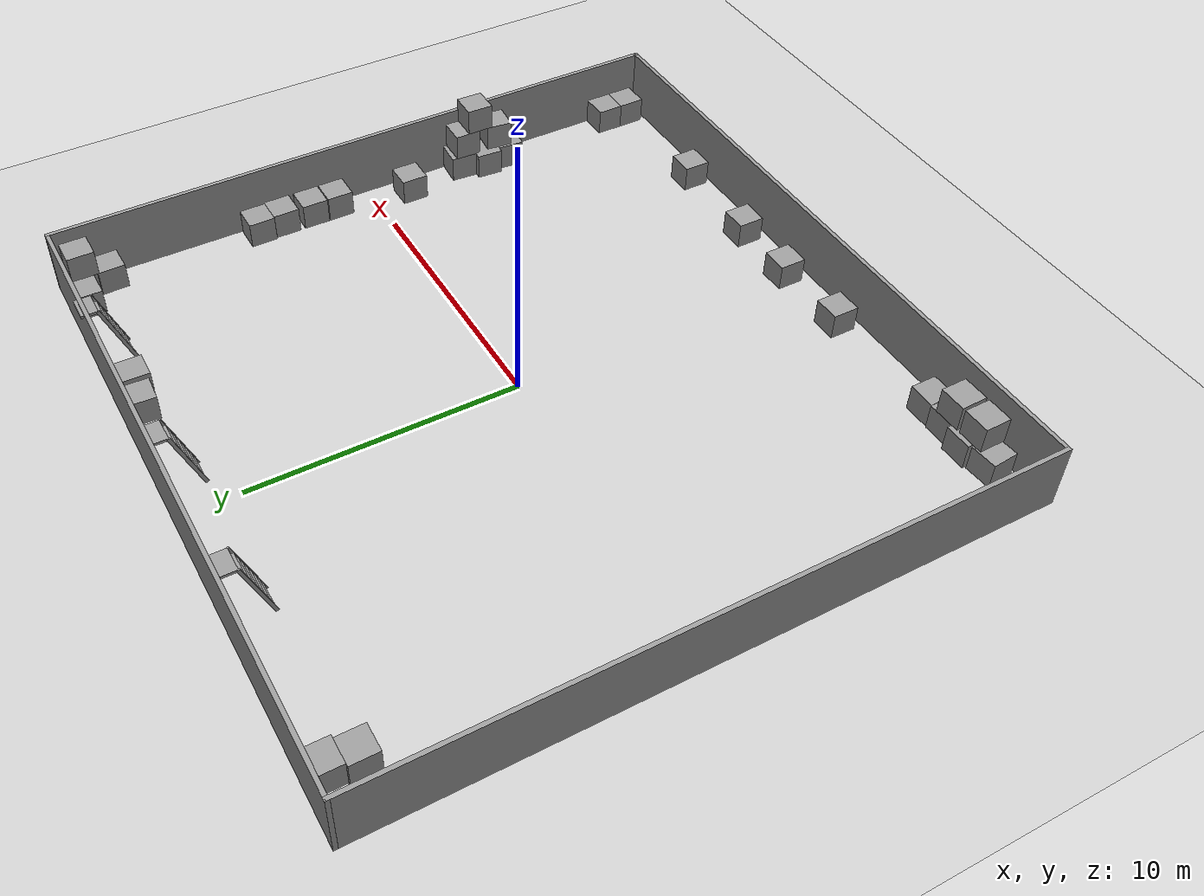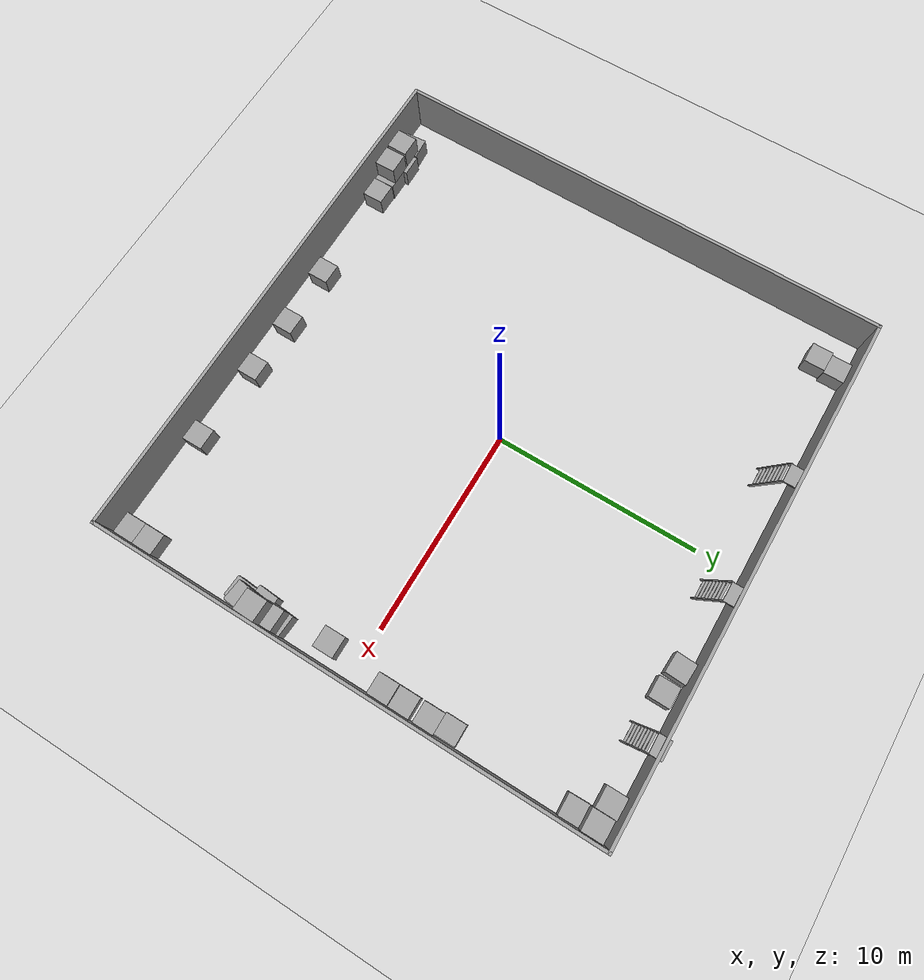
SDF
<sdf version="1.7">
 <world name="default">
  <model name="ground_plane">
   <static>1</static>
   <link name="link">
    <collision name="collision">
     <geometry><plane><normal>0 0 1</normal><size>100 100</size></plane></geometry>
     <surface>
      <contact><collide_bitmask>65535</collide_bitmask></contact>
      <friction><ode><mu>100</mu><mu2>50</mu2></ode></friction>
     </surface>
    </collision>
    <visual name="visual">
     <cast_shadows>0</cast_shadows>
     <geometry><plane><normal>0 0 1</normal><size>100 100</size></plane></geometry>
     <material>
      <script><uri>file://media/materials/scripts/gazebo.material</uri><name>Gazebo/Grey</name></script>
     </material>
    </visual>
   </link>
  </model>
  <model name="unit_box">
   <pose>-10.5484 11.7008 0.5 0 0 -0.000958</pose>
   <link name="link">
    <inertial>
     <mass>1</mass>
     <inertia>
      <ixx>0.166667</ixx>
      <ixy>0</ixy>
      <ixz>0</ixz>
      <iyy>0.166667</iyy>
      <iyz>0</iyz>
      <izz>0.166667</izz>
     </inertia>
    </inertial>
    <collision name="collision"><geometry><box><size>1 1 1</size></box></geometry></collision>
    <visual name="visual">
     <geometry><box><size>1 1 1</size></box></geometry>
     <material>
      <script><name>Gazebo/Grey</name><uri>file://media/materials/scripts/gazebo.material</uri></script>
     </material>
    </visual>
   </link>
  </model>
  <model name="unit_box_0">
   <pose>-10.6609 10.7009 0.5 0 0 -0.001123</pose>
   <link name="link">
    <inertial>
     <mass>1</mass>
     <inertia>
      <ixx>0.166667</ixx>
      <ixy>0</ixy>
      <ixz>0</ixz>
      <iyy>0.166667</iyy>
      <iyz>0</iyz>
      <izz>0.166667</izz>
     </inertia>
    </inertial>
    <collision name="collision"><geometry><box><size>1 1 1</size></box></geometry></collision>
    <visual name="visual">
     <geometry><box><size>1 1 1</size></box></geometry>
     <material>
      <script><name>Gazebo/Grey</name><uri>file://media/materials/scripts/gazebo.material</uri></script>
     </material>
    </visual>
   </link>
  </model>
  <model name="unit_box_10">
   <pose>11.9384 10.5607 0.499988 5e-06 -0 0.018642</pose>
   <link name="link">
    <inertial>
     <mass>1</mass>
     <inertia>
      <ixx>0.166667</ixx>
      <ixy>0</ixy>
      <ixz>0</ixz>
      <iyy>0.166667</iyy>
      <iyz>0</iyz>
      <izz>0.166667</izz>
     </inertia>
    </inertial>
    <collision name="collision"><geometry><box><size>1 1 1</size></box></geometry></collision>
    <visual name="visual">
     <geometry><box><size>1 1 1</size></box></geometry>
     <material>
      <script><name>Gazebo/Grey</name><uri>file://media/materials/scripts/gazebo.material</uri></script>
     </material>
    </visual>
   </link>
  </model>
  <model name="unit_box_11">
   <pose>11.9467 11.5733 0.5 -1e-06 -1e-06 -0.000905</pose>
   <link name="link">
    <inertial>
     <mass>1</mass>
     <inertia>
      <ixx>0.166667</ixx>
      <ixy>0</ixy>
      <ixz>0</ixz>
      <iyy>0.166667</iyy>
      <iyz>0</iyz>
      <izz>0.166667</izz>
     </inertia>
    </inertial>
    <collision name="collision"><geometry><box><size>1 1 1</size></box></geometry></collision>
    <visual name="visual">
     <geometry><box><size>1 1 1</size></box></geometry>
     <material>
      <script><name>Gazebo/Grey</name><uri>file://media/materials/scripts/gazebo.material</uri></script>
     </material>
    </visual>
   </link>
  </model>
  <model name="unit_box_12">
   <pose>10.9468 11.7034 0.499988 5e-06 0 -0.000905</pose>
   <link name="link">
    <inertial>
     <mass>1</mass>
     <inertia>
      <ixx>0.166667</ixx>
      <ixy>0</ixy>
      <ixz>0</ixz>
      <iyy>0.166667</iyy>
      <iyz>0</iyz>
      <izz>0.166667</izz>
     </inertia>
    </inertial>
    <collision name="collision"><geometry><box><size>1 1 1</size></box></geometry></collision>
    <visual name="visual">
     <geometry><box><size>1 1 1</size></box></geometry>
     <material>
      <script><name>Gazebo/Grey</name><uri>file://media/materials/scripts/gazebo.material</uri></script>
     </material>
    </visual>
   </link>
  </model>
  <model name="unit_box_13">
   <pose>11.9323 11.5076 1.49999 4e-06 1.5e-05 0.004138</pose>
   <link name="link">
    <inertial>
     <mass>1</mass>
     <inertia>
      <ixx>0.166667</ixx>
      <ixy>0</ixy>
      <ixz>0</ixz>
      <iyy>0.166667</iyy>
      <iyz>0</iyz>
      <izz>0.166667</izz>
     </inertia>
    </inertial>
    <collision name="collision"><geometry><box><size>1 1 1</size></box></geometry></collision>
    <visual name="visual">
     <geometry><box><size>1 1 1</size></box></geometry>
     <material>
      <script><name>Gazebo/Grey</name><uri>file://media/materials/scripts/gazebo.material</uri></script>
     </material>
    </visual>
   </link>
  </model>
  <model name="unit_box_15">
   <pose>11.9479 1.5494 0.499995 0 1e-05 1.7e-05</pose>
   <link name="link">
    <inertial>
     <mass>1</mass>
     <inertia>
      <ixx>0.166667</ixx>
      <ixy>0</ixy>
      <ixz>0</ixz>
      <iyy>0.166667</iyy>
      <iyz>0</iyz>
      <izz>0.166667</izz>
     </inertia>
    </inertial>
    <collision name="collision"><geometry><box><size>1 1 1</size></box></geometry></collision>
    <visual name="visual">
     <geometry><box><size>1 1 1</size></box></geometry>
     <material>
      <script><name>Gazebo/Grey</name><uri>file://media/materials/scripts/gazebo.material</uri></script>
     </material>
    </visual>
   </link>
  </model>
  <model name="unit_box_16">
   <pose>-10.6579 -11.5048 0.499862 5e-06 -1.3e-05 0.079785</pose>
   <link name="link">
    <inertial>
     <mass>1</mass>
     <inertia>
      <ixx>0.166667</ixx>
      <ixy>0</ixy>
      <ixz>0</ixz>
      <iyy>0.166667</iyy>
      <iyz>0</iyz>
      <izz>0.166667</izz>
     </inertia>
    </inertial>
    <collision name="collision"><geometry><box><size>1 1 1</size></box></geometry></collision>
    <visual name="visual">
     <geometry><box><size>1 1 1</size></box></geometry>
     <material>
      <script><name>Gazebo/Grey</name><uri>file://media/materials/scripts/gazebo.material</uri></script>
     </material>
    </visual>
   </link>
  </model>
  <model name="unit_box_17">
   <pose>-9.98977 -11.5435 1.49988 6e-06 -3e-05 0.011934</pose>
   <link name="link">
    <inertial>
     <mass>1</mass>
     <inertia>
      <ixx>0.166667</ixx>
      <ixy>0</ixy>
      <ixz>0</ixz>
      <iyy>0.166667</iyy>
      <iyz>0</iyz>
      <izz>0.166667</izz>
     </inertia>
    </inertial>
    <collision name="collision"><geometry><box><size>1 1 1</size></box></geometry></collision>
    <visual name="visual">
     <geometry><box><size>1 1 1</size></box></geometry>
     <material>
      <script><name>Gazebo/Grey</name><uri>file://media/materials/scripts/gazebo.material</uri></script>
     </material>
    </visual>
   </link>
  </model>
  <model name="unit_box_17_clone">
   <pose>-8.62537 -11.5193 0.5 -1e-06 1e-06 0.010227</pose>
   <link name="link">
    <inertial>
     <mass>1</mass>
     <inertia>
      <ixx>0.166667</ixx>
      <ixy>0</ixy>
      <ixz>0</ixz>
      <iyy>0.166667</iyy>
      <iyz>0</iyz>
      <izz>0.166667</izz>
     </inertia>
    </inertial>
    <collision name="collision"><geometry><box><size>1 1 1</size></box></geometry></collision>
    <visual name="visual">
     <geometry><box><size>1 1 1</size></box></geometry>
     <material>
      <script><name>Gazebo/Grey</name><uri>file://media/materials/scripts/gazebo.material</uri></script>
     </material>
    </visual>
   </link>
  </model>
  <model name="unit_box_17_clone_2">
   <pose>-8.88611 -11.5168 1.5 -1e-06 1.9e-05 0.016055</pose>
   <link name="link">
    <inertial>
     <mass>1</mass>
     <inertia>
      <ixx>0.166667</ixx>
      <ixy>0</ixy>
      <ixz>0</ixz>
      <iyy>0.166667</iyy>
      <iyz>0</iyz>
      <izz>0.166667</izz>
     </inertia>
    </inertial>
    <collision name="collision"><geometry><box><size>1 1 1</size></box></geometry></collision>
    <visual name="visual">
     <geometry><box><size>1 1 1</size></box></geometry>
     <material>
      <script><name>Gazebo/Grey</name><uri>file://media/materials/scripts/gazebo.material</uri></script>
     </material>
    </visual>
   </link>
  </model>
  <model name="unit_box_18">
   <pose>11.5985 -4.78924 0.499999 -7e-06 6e-06 -0.070347</pose>
   <link name="link">
    <inertial>
     <mass>1</mass>
     <inertia>
      <ixx>0.166667</ixx>
      <ixy>0</ixy>
      <ixz>0</ixz>
      <iyy>0.166667</iyy>
      <iyz>0</iyz>
      <izz>0.166667</izz>
     </inertia>
    </inertial>
    <collision name="collision"><geometry><box><size>1 1 1</size></box></geometry></collision>
    <visual name="visual">
     <geometry><box><size>1 1 1</size></box></geometry>
     <material>
      <script><name>Gazebo/Grey</name><uri>file://media/materials/scripts/gazebo.material</uri></script>
     </material>
    </visual>
   </link>
  </model>
  <model name="unit_box_19">
   <pose>11.9085 -3.80861 0.5 0 1e-06 -0.070342</pose>
   <link name="link">
    <inertial>
     <mass>1</mass>
     <inertia>
      <ixx>0.166667</ixx>
      <ixy>0</ixy>
      <ixz>0</ixz>
      <iyy>0.166667</iyy>
      <iyz>0</iyz>
      <izz>0.166667</izz>
     </inertia>
    </inertial>
    <collision name="collision"><geometry><box><size>1 1 1</size></box></geometry></collision>
    <visual name="visual">
     <geometry><box><size>1 1 1</size></box></geometry>
     <material>
      <script><name>Gazebo/Grey</name><uri>file://media/materials/scripts/gazebo.material</uri></script>
     </material>
    </visual>
   </link>
  </model>
  <model name="unit_box_20">
   <pose>11.7268 -5.80078 0.5 7e-06 7e-06 -0.070359</pose>
   <link name="link">
    <inertial>
     <mass>1</mass>
     <inertia>
      <ixx>0.166667</ixx>
      <ixy>0</ixy>
      <ixz>0</ixz>
      <iyy>0.166667</iyy>
      <iyz>0</iyz>
      <izz>0.166667</izz>
     </inertia>
    </inertial>
    <collision name="collision"><geometry><box><size>1 1 1</size></box></geometry></collision>
    <visual name="visual">
     <geometry><box><size>1 1 1</size></box></geometry>
     <material>
      <script><name>Gazebo/Grey</name><uri>file://media/materials/scripts/gazebo.material</uri></script>
     </material>
    </visual>
   </link>
  </model>
  <model name="unit_box_20_clone">
   <pose>7.00934 -11.5415 0.499995 0 1e-05 0.002791</pose>
   <link name="link">
    <inertial>
     <mass>1</mass>
     <inertia>
      <ixx>0.166667</ixx>
      <ixy>0</ixy>
      <ixz>0</ixz>
      <iyy>0.166667</iyy>
      <iyz>0</iyz>
      <izz>0.166667</izz>
     </inertia>
    </inertial>
    <collision name="collision"><geometry><box><size>1 1 1</size></box></geometry></collision>
    <visual name="visual">
     <geometry><box><size>1 1 1</size></box></geometry>
     <material>
      <script><name>Gazebo/Grey</name><uri>file://media/materials/scripts/gazebo.material</uri></script>
     </material>
    </visual>
   </link>
  </model>
  <model name="unit_box_20_clone_0">
   <pose>11.8643 -5.36609 1.5 -5e-06 1e-05 -0.111309</pose>
   <link name="link">
    <inertial>
     <mass>1</mass>
     <inertia>
      <ixx>0.166667</ixx>
      <ixy>0</ixy>
      <ixz>0</ixz>
      <iyy>0.166667</iyy>
      <iyz>0</iyz>
      <izz>0.166667</izz>
     </inertia>
    </inertial>
    <collision name="collision"><geometry><box><size>1 1 1</size></box></geometry></collision>
    <visual name="visual">
     <geometry><box><size>1 1 1</size></box></geometry>
     <material>
      <script><name>Gazebo/Grey</name><uri>file://media/materials/scripts/gazebo.material</uri></script>
     </material>
    </visual>
   </link>
  </model>
  <model name="unit_box_20_clone_1">
   <pose>11.9239 -4.53395 2.5 4e-06 1.9e-05 -0.02535</pose>
   <link name="link">
    <inertial>
     <mass>1</mass>
     <inertia>
      <ixx>0.166667</ixx>
      <ixy>0</ixy>
      <ixz>0</ixz>
      <iyy>0.166667</iyy>
      <iyz>0</iyz>
      <izz>0.166667</izz>
     </inertia>
    </inertial>
    <collision name="collision"><geometry><box><size>1 1 1</size></box></geometry></collision>
    <visual name="visual">
     <geometry><box><size>1 1 1</size></box></geometry>
     <material>
      <script><name>Gazebo/Grey</name><uri>file://media/materials/scripts/gazebo.material</uri></script>
     </material>
    </visual>
   </link>
  </model>
  <model name="unit_box_21">
   <pose>11.9159 -3.98319 1.5 4e-06 6e-06 -0.010982</pose>
   <link name="link">
    <inertial>
     <mass>1</mass>
     <inertia>
      <ixx>0.166667</ixx>
      <ixy>0</ixy>
      <ixz>0</ixz>
      <iyy>0.166667</iyy>
      <iyz>0</iyz>
      <izz>0.166667</izz>
     </inertia>
    </inertial>
    <collision name="collision"><geometry><box><size>1 1 1</size></box></geometry></collision>
    <visual name="visual">
     <geometry><box><size>1 1 1</size></box></geometry>
     <material>
      <script><name>Gazebo/Grey</name><uri>file://media/materials/scripts/gazebo.material</uri></script>
     </material>
    </visual>
   </link>
  </model>
  <model name="unit_box_22">
   <pose>11.9475 -11.539 0.499995 0 1e-05 0.00075</pose>
   <link name="link">
    <inertial>
     <mass>1</mass>
     <inertia>
      <ixx>0.166667</ixx>
      <ixy>0</ixy>
      <ixz>0</ixz>
      <iyy>0.166667</iyy>
      <iyz>0</iyz>
      <izz>0.166667</izz>
     </inertia>
    </inertial>
    <collision name="collision"><geometry><box><size>1 1 1</size></box></geometry></collision>
    <visual name="visual">
     <geometry><box><size>1 1 1</size></box></geometry>
     <material>
      <script><name>Gazebo/Grey</name><uri>file://media/materials/scripts/gazebo.material</uri></script>
     </material>
    </visual>
   </link>
  </model>
  <model name="unit_box_23">
   <pose>6.13032 11.5243 0.499995 1e-05 -0 -0.007274</pose>
   <link name="link">
    <inertial>
     <mass>1</mass>
     <inertia>
      <ixx>0.166667</ixx>
      <ixy>0</ixy>
      <ixz>0</ixz>
      <iyy>0.166667</iyy>
      <iyz>0</iyz>
      <izz>0.166667</izz>
     </inertia>
    </inertial>
    <collision name="collision"><geometry><box><size>1 1 1</size></box></geometry></collision>
    <visual name="visual">
     <geometry><box><size>1 1 1</size></box></geometry>
     <material>
      <script><name>Gazebo/Grey</name><uri>file://media/materials/scripts/gazebo.material</uri></script>
     </material>
    </visual>
   </link>
  </model>
  <model name="unit_box_24">
   <pose>4.94336 11.6796 0.499995 -1.57081 -1.57079 1.51865</pose>
   <link name="link">
    <inertial>
     <mass>1</mass>
     <inertia>
      <ixx>0.166667</ixx>
      <ixy>0</ixy>
      <ixz>0</ixz>
      <iyy>0.166667</iyy>
      <iyz>0</iyz>
      <izz>0.166667</izz>
     </inertia>
    </inertial>
    <collision name="collision"><geometry><box><size>1 1 1</size></box></geometry></collision>
    <visual name="visual">
     <geometry><box><size>1 1 1</size></box></geometry>
     <material>
      <script><name>Gazebo/Grey</name><uri>file://media/materials/scripts/gazebo.material</uri></script>
     </material>
    </visual>
   </link>
  </model>
  <model name="unit_box_25">
   <pose>11.9479 2.5813 0.499995 0 1e-05 1.6e-05</pose>
   <link name="link">
    <inertial>
     <mass>1</mass>
     <inertia>
      <ixx>0.166667</ixx>
      <ixy>0</ixy>
      <ixz>0</ixz>
      <iyy>0.166667</iyy>
      <iyz>0</iyz>
      <izz>0.166667</izz>
     </inertia>
    </inertial>
    <collision name="collision"><geometry><box><size>1 1 1</size></box></geometry></collision>
    <visual name="visual">
     <geometry><box><size>1 1 1</size></box></geometry>
     <material>
      <script><name>Gazebo/Grey</name><uri>file://media/materials/scripts/gazebo.material</uri></script>
     </material>
    </visual>
   </link>
  </model>
  <model name="unit_box_26">
   <pose>11.9477 3.76706 0.499995 -1e-05 -0 0.000301</pose>
   <link name="link">
    <inertial>
     <mass>1</mass>
     <inertia>
      <ixx>0.166667</ixx>
      <ixy>0</ixy>
      <ixz>0</ixz>
      <iyy>0.166667</iyy>
      <iyz>0</iyz>
      <izz>0.166667</izz>
     </inertia>
    </inertial>
    <collision name="collision"><geometry><box><size>1 1 1</size></box></geometry></collision>
    <visual name="visual">
     <geometry><box><size>1 1 1</size></box></geometry>
     <material>
      <script><name>Gazebo/Grey</name><uri>file://media/materials/scripts/gazebo.material</uri></script>
     </material>
    </visual>
   </link>
  </model>
  <model name="unit_box_27">
   <pose>11.8814 4.76704 0.499995 -1e-05 0 0.000302</pose>
   <link name="link">
    <inertial>
     <mass>1</mass>
     <inertia>
      <ixx>0.166667</ixx>
      <ixy>0</ixy>
      <ixz>0</ixz>
      <iyy>0.166667</iyy>
      <iyz>0</iyz>
      <izz>0.166667</izz>
     </inertia>
    </inertial>
    <collision name="collision"><geometry><box><size>1 1 1</size></box></geometry></collision>
    <visual name="visual">
     <geometry><box><size>1 1 1</size></box></geometry>
     <material>
      <script><name>Gazebo/Grey</name><uri>file://media/materials/scripts/gazebo.material</uri></script>
     </material>
    </visual>
   </link>
  </model>
  <model name="unit_box_28">
   <pose>-7.61872 -11.5424 0.499995 -1e-05 -0 0.003873</pose>
   <link name="link">
    <inertial>
     <mass>1</mass>
     <inertia>
      <ixx>0.166667</ixx>
      <ixy>0</ixy>
      <ixz>0</ixz>
      <iyy>0.166667</iyy>
      <iyz>0</iyz>
      <izz>0.166667</izz>
     </inertia>
    </inertial>
    <collision name="collision"><geometry><box><size>1 1 1</size></box></geometry></collision>
    <visual name="visual">
     <geometry><box><size>1 1 1</size></box></geometry>
     <material>
      <script><name>Gazebo/Grey</name><uri>file://media/materials/scripts/gazebo.material</uri></script>
     </material>
    </visual>
   </link>
  </model>
  <model name="unit_box_29">
   <pose>-2.65126 -11.3902 0.5 0 -0 0</pose>
   <link name="link">
    <inertial>
     <mass>1</mass>
     <inertia>
      <ixx>0.166667</ixx>
      <ixy>0</ixy>
      <ixz>0</ixz>
      <iyy>0.166667</iyy>
      <iyz>0</iyz>
      <izz>0.166667</izz>
     </inertia>
    </inertial>
    <collision name="collision"><geometry><box><size>1 1 1</size></box></geometry></collision>
    <visual name="visual">
     <geometry><box><size>1 1 1</size></box></geometry>
     <material>
      <script><name>Gazebo/Grey</name><uri>file://media/materials/scripts/gazebo.material</uri></script>
     </material>
    </visual>
   </link>
  </model>
  <model name="unit_box_30">
   <pose>3.08895 -11.3753 0.499995 -1e-05 -0 -1.1e-05</pose>
   <link name="link">
    <inertial>
     <mass>1</mass>
     <inertia>
      <ixx>0.166667</ixx>
      <ixy>0</ixy>
      <ixz>0</ixz>
      <iyy>0.166667</iyy>
      <iyz>0</iyz>
      <izz>0.166667</izz>
     </inertia>
    </inertial>
    <collision name="collision"><geometry><box><size>1 1 1</size></box></geometry></collision>
    <visual name="visual">
     <geometry><box><size>1 1 1</size></box></geometry>
     <material>
      <script><name>Gazebo/Grey</name><uri>file://media/materials/scripts/gazebo.material</uri></script>
     </material>
    </visual>
   </link>
  </model>
  <model name="unit_box_31">
   <pose>0.379472 -11.3219 0.499995 1e-05 -0 0</pose>
   <link name="link">
    <inertial>
     <mass>1</mass>
     <inertia>
      <ixx>0.166667</ixx>
      <ixy>0</ixy>
      <ixz>0</ixz>
      <iyy>0.166667</iyy>
      <iyz>0</iyz>
      <izz>0.166667</izz>
     </inertia>
    </inertial>
    <collision name="collision"><geometry><box><size>1 1 1</size></box></geometry></collision>
    <visual name="visual">
     <geometry><box><size>1 1 1</size></box></geometry>
     <material>
      <script><name>Gazebo/Grey</name><uri>file://media/materials/scripts/gazebo.material</uri></script>
     </material>
    </visual>
   </link>
  </model>
  <model name="unit_box_32">
   <pose>11.5214 -1.4211 0.499995 0 -1e-05 2e-06</pose>
   <link name="link">
    <inertial>
     <mass>1</mass>
     <inertia>
      <ixx>0.166667</ixx>
      <ixy>0</ixy>
      <ixz>0</ixz>
      <iyy>0.166667</iyy>
      <iyz>0</iyz>
      <izz>0.166667</izz>
     </inertia>
    </inertial>
    <collision name="collision"><geometry><box><size>1 1 1</size></box></geometry></collision>
    <visual name="visual">
     <geometry><box><size>1 1 1</size></box></geometry>
     <material>
      <script><name>Gazebo/Grey</name><uri>file://media/materials/scripts/gazebo.material</uri></script>
     </material>
    </visual>
   </link>
  </model>
  <model name="unit_box_33">
   <pose>11.9475 -10.539 0.499995 -0 1e-05 0.000745</pose>
   <link name="link">
    <inertial>
     <mass>1</mass>
     <inertia>
      <ixx>0.166667</ixx>
      <ixy>0</ixy>
      <ixz>0</ixz>
      <iyy>0.166667</iyy>
      <iyz>0</iyz>
      <izz>0.166667</izz>
     </inertia>
    </inertial>
    <collision name="collision"><geometry><box><size>1 1 1</size></box></geometry></collision>
    <visual name="visual">
     <geometry><box><size>1 1 1</size></box></geometry>
     <material>
      <script><name>Gazebo/Grey</name><uri>file://media/materials/scripts/gazebo.material</uri></script>
     </material>
    </visual>
   </link>
  </model>
  <model name="ladder_70deg_0rails">
   <static>1</static>
   <link name="step0">
    <pose>0 0.097059 0.266667 0 -0 0</pose>
    <inertial>
     <mass>9.75482</mass>
     <inertia>
      <ixx>0.00957124</ixx>
      <iyy>0.65963</iyy>
      <izz>0.666842</izz>
      <ixy>0</ixy>
      <ixz>0</ixz>
      <iyz>0</iyz>
     </inertia>
    </inertial>
    <collision name="collision"><geometry><box><size>0.9 0.1016 0.0381</size></box></geometry></collision>
    <visual name="visual">
     <geometry><box><size>0.9 0.1016 0.0381</size></box></geometry>
     <material>
      <script><uri>file://media/materials/scripts/gazebo.material</uri><name>Gazebo/Grey</name></script>
     </material>
    </visual>
   </link>
   <link name="step1">
    <pose>0 0.194117 0.533333 0 -0 0</pose>
    <inertial>
     <mass>9.75482</mass>
     <inertia>
      <ixx>0.00957124</ixx>
      <iyy>0.65963</iyy>
      <izz>0.666842</izz>
      <ixy>0</ixy>
      <ixz>0</ixz>
      <iyz>0</iyz>
     </inertia>
    </inertial>
    <collision name="collision"><geometry><box><size>0.9 0.1016 0.0381</size></box></geometry></collision>
    <visual name="visual">
     <geometry><box><size>0.9 0.1016 0.0381</size></box></geometry>
     <material>
      <script><uri>file://media/materials/scripts/gazebo.material</uri><name>Gazebo/Grey</name></script>
     </material>
    </visual>
   </link>
   <link name="step2">
    <pose>0 0.291176 0.8 0 -0 0</pose>
    <inertial>
     <mass>9.75482</mass>
     <inertia>
      <ixx>0.00957124</ixx>
      <iyy>0.65963</iyy>
      <izz>0.666842</izz>
      <ixy>0</ixy>
      <ixz>0</ixz>
      <iyz>0</iyz>
     </inertia>
    </inertial>
    <collision name="collision"><geometry><box><size>0.9 0.1016 0.0381</size></box></geometry></collision>
    <visual name="visual">
     <geometry><box><size>0.9 0.1016 0.0381</size></box></geometry>
     <material>
      <script><uri>file://media/materials/scripts/gazebo.material</uri><name>Gazebo/Grey</name></script>
     </material>
    </visual>
   </link>
   <link name="step3">
    <pose>0 0.388235 1.06667 0 -0 0</pose>
    <inertial>
     <mass>9.75482</mass>
     <inertia>
      <ixx>0.00957124</ixx>
      <iyy>0.65963</iyy>
      <izz>0.666842</izz>
      <ixy>0</ixy>
      <ixz>0</ixz>
      <iyz>0</iyz>
     </inertia>
    </inertial>
    <collision name="collision"><geometry><box><size>0.9 0.1016 0.0381</size></box></geometry></collision>
    <visual name="visual">
     <geometry><box><size>0.9 0.1016 0.0381</size></box></geometry>
     <material>
      <script><uri>file://media/materials/scripts/gazebo.material</uri><name>Gazebo/Grey</name></script>
     </material>
    </visual>
   </link>
   <link name="step4">
    <pose>0 0.485294 1.33333 0 -0 0</pose>
    <inertial>
     <mass>9.75482</mass>
     <inertia>
      <ixx>0.00957124</ixx>
      <iyy>0.65963</iyy>
      <izz>0.666842</izz>
      <ixy>0</ixy>
      <ixz>0</ixz>
      <iyz>0</iyz>
     </inertia>
    </inertial>
    <collision name="collision"><geometry><box><size>0.9 0.1016 0.0381</size></box></geometry></collision>
    <visual name="visual">
     <geometry><box><size>0.9 0.1016 0.0381</size></box></geometry>
     <material>
      <script><uri>file://media/materials/scripts/gazebo.material</uri><name>Gazebo/Grey</name></script>
     </material>
    </visual>
   </link>
   <link name="step5">
    <pose>0 0.582352 1.6 0 -0 0</pose>
    <inertial>
     <mass>9.75482</mass>
     <inertia>
      <ixx>0.00957124</ixx>
      <iyy>0.65963</iyy>
      <izz>0.666842</izz>
      <ixy>0</ixy>
      <ixz>0</ixz>
      <iyz>0</iyz>
     </inertia>
    </inertial>
    <collision name="collision"><geometry><box><size>0.9 0.1016 0.0381</size></box></geometry></collision>
    <visual name="visual">
     <geometry><box><size>0.9 0.1016 0.0381</size></box></geometry>
     <material>
      <script><uri>file://media/materials/scripts/gazebo.material</uri><name>Gazebo/Grey</name></script>
     </material>
    </visual>
   </link>
   <link name="step6">
    <pose>0 0.679411 1.86667 0 -0 0</pose>
    <inertial>
     <mass>9.75482</mass>
     <inertia>
      <ixx>0.00957124</ixx>
      <iyy>0.65963</iyy>
      <izz>0.666842</izz>
      <ixy>0</ixy>
      <ixz>0</ixz>
      <iyz>0</iyz>
     </inertia>
    </inertial>
    <collision name="collision"><geometry><box><size>0.9 0.1016 0.0381</size></box></geometry></collision>
    <visual name="visual">
     <geometry><box><size>0.9 0.1016 0.0381</size></box></geometry>
     <material>
      <script><uri>file://media/materials/scripts/gazebo.material</uri><name>Gazebo/Grey</name></script>
     </material>
    </visual>
   </link>
   <link name="step7">
    <pose>0 0.77647 2.13333 0 -0 0</pose>
    <inertial>
     <mass>9.75482</mass>
     <inertia>
      <ixx>0.00957124</ixx>
      <iyy>0.65963</iyy>
      <izz>0.666842</izz>
      <ixy>0</ixy>
      <ixz>0</ixz>
      <iyz>0</iyz>
     </inertia>
    </inertial>
    <collision name="collision"><geometry><box><size>0.9 0.1016 0.0381</size></box></geometry></collision>
    <visual name="visual">
     <geometry><box><size>0.9 0.1016 0.0381</size></box></geometry>
     <material>
      <script><uri>file://media/materials/scripts/gazebo.material</uri><name>Gazebo/Grey</name></script>
     </material>
    </visual>
   </link>
   <link name="landing">
    <pose>0 1.17353 2.4 0 -0 0</pose>
    <inertial>
     <mass>57.6072</mass>
     <inertia><ixx>1.73518</ixx><iyy>3.89545</iyy><izz>5.6167</izz><ixy>0</ixy><ixz>0</ixz><iyz>0</iyz></inertia>
    </inertial>
    <collision name="collision"><geometry><box><size>0.9 0.6 0.1016</size></box></geometry></collision>
    <visual name="visual">
     <geometry><box><size>0.9 0.6 0.1016</size></box></geometry>
     <material>
      <script><uri>file://media/materials/scripts/gazebo.material</uri><name>Gazebo/Grey</name></script>
     </material>
    </visual>
   </link>
   <link name="left_side_wall">
    <pose>-0.45 0.436764 1.2 1.22173 -0 0</pose>
    <collision name="collision"><geometry><box><size>0.0508 2.63403 0.13</size></box></geometry></collision>
    <visual name="visual">
     <geometry><box><size>0.0508 2.63403 0.13</size></box></geometry>
     <material>
      <script><uri>file://media/materials/scripts/gazebo.material</uri><name>Gazebo/Grey</name></script>
     </material>
    </visual>
   </link>
   <link name="right_side_wall">
    <pose>0.45 0.436764 1.2 1.22173 -0 0</pose>
    <collision name="collision"><geometry><box><size>0.0508 2.63403 0.13</size></box></geometry></collision>
    <visual name="visual">
     <geometry><box><size>0.0508 2.63403 0.13</size></box></geometry>
     <material>
      <script><uri>file://media/materials/scripts/gazebo.material</uri><name>Gazebo/Grey</name></script>
     </material>
    </visual>
   </link>
   <pose>-4.32634 10.7561 0 0 -0 0</pose>
  </model>
  <model name="unit_box_0_clone">
   <pose>-9.63147 -11.3606 0.499909 5e-06 -4.6e-05 0.019096</pose>
   <link name="link">
    <inertial>
     <mass>1</mass>
     <inertia>
      <ixx>0.166667</ixx>
      <ixy>0</ixy>
      <ixz>0</ixz>
      <iyy>0.166667</iyy>
      <iyz>0</iyz>
      <izz>0.166667</izz>
     </inertia>
    </inertial>
    <collision name="collision"><geometry><box><size>1 1 1</size></box></geometry></collision>
    <visual name="visual">
     <geometry><box><size>1 1 1</size></box></geometry>
     <material>
      <script><name>Gazebo/Grey</name><uri>file://media/materials/scripts/gazebo.material</uri></script>
     </material>
    </visual>
   </link>
  </model>
  <model name="ladder_70deg_0rails_clone">
   <static>1</static>
   <link name="step0">
    <pose>0 0.097059 0.266667 0 -0 0</pose>
    <inertial>
     <mass>9.75482</mass>
     <inertia>
      <ixx>0.00957124</ixx>
      <iyy>0.65963</iyy>
      <izz>0.666842</izz>
      <ixy>0</ixy>
      <ixz>0</ixz>
      <iyz>0</iyz>
     </inertia>
    </inertial>
    <collision name="collision"><geometry><box><size>0.9 0.1016 0.0381</size></box></geometry></collision>
    <visual name="visual">
     <geometry><box><size>0.9 0.1016 0.0381</size></box></geometry>
     <material>
      <script><uri>file://media/materials/scripts/gazebo.material</uri><name>Gazebo/Grey</name></script>
     </material>
    </visual>
   </link>
   <link name="step1">
    <pose>0 0.194117 0.533333 0 -0 0</pose>
    <inertial>
     <mass>9.75482</mass>
     <inertia>
      <ixx>0.00957124</ixx>
      <iyy>0.65963</iyy>
      <izz>0.666842</izz>
      <ixy>0</ixy>
      <ixz>0</ixz>
      <iyz>0</iyz>
     </inertia>
    </inertial>
    <collision name="collision"><geometry><box><size>0.9 0.1016 0.0381</size></box></geometry></collision>
    <visual name="visual">
     <geometry><box><size>0.9 0.1016 0.0381</size></box></geometry>
     <material>
      <script><uri>file://media/materials/scripts/gazebo.material</uri><name>Gazebo/Grey</name></script>
     </material>
    </visual>
   </link>
   <link name="step2">
    <pose>0 0.291176 0.8 0 -0 0</pose>
    <inertial>
     <mass>9.75482</mass>
     <inertia>
      <ixx>0.00957124</ixx>
      <iyy>0.65963</iyy>
      <izz>0.666842</izz>
      <ixy>0</ixy>
      <ixz>0</ixz>
      <iyz>0</iyz>
     </inertia>
    </inertial>
    <collision name="collision"><geometry><box><size>0.9 0.1016 0.0381</size></box></geometry></collision>
    <visual name="visual">
     <geometry><box><size>0.9 0.1016 0.0381</size></box></geometry>
     <material>
      <script><uri>file://media/materials/scripts/gazebo.material</uri><name>Gazebo/Grey</name></script>
     </material>
    </visual>
   </link>
   <link name="step3">
    <pose>0 0.388235 1.06667 0 -0 0</pose>
    <inertial>
     <mass>9.75482</mass>
     <inertia>
      <ixx>0.00957124</ixx>
      <iyy>0.65963</iyy>
      <izz>0.666842</izz>
      <ixy>0</ixy>
      <ixz>0</ixz>
      <iyz>0</iyz>
     </inertia>
    </inertial>
    <collision name="collision"><geometry><box><size>0.9 0.1016 0.0381</size></box></geometry></collision>
    <visual name="visual">
     <geometry><box><size>0.9 0.1016 0.0381</size></box></geometry>
     <material>
      <script><uri>file://media/materials/scripts/gazebo.material</uri><name>Gazebo/Grey</name></script>
     </material>
    </visual>
   </link>
   <link name="step4">
    <pose>0 0.485294 1.33333 0 -0 0</pose>
    <inertial>
     <mass>9.75482</mass>
     <inertia>
      <ixx>0.00957124</ixx>
      <iyy>0.65963</iyy>
      <izz>0.666842</izz>
      <ixy>0</ixy>
      <ixz>0</ixz>
      <iyz>0</iyz>
     </inertia>
    </inertial>
    <collision name="collision"><geometry><box><size>0.9 0.1016 0.0381</size></box></geometry></collision>
    <visual name="visual">
     <geometry><box><size>0.9 0.1016 0.0381</size></box></geometry>
     <material>
      <script><uri>file://media/materials/scripts/gazebo.material</uri><name>Gazebo/Grey</name></script>
     </material>
    </visual>
   </link>
   <link name="step5">
    <pose>0 0.582352 1.6 0 -0 0</pose>
    <inertial>
     <mass>9.75482</mass>
     <inertia>
      <ixx>0.00957124</ixx>
      <iyy>0.65963</iyy>
      <izz>0.666842</izz>
      <ixy>0</ixy>
      <ixz>0</ixz>
      <iyz>0</iyz>
     </inertia>
    </inertial>
    <collision name="collision"><geometry><box><size>0.9 0.1016 0.0381</size></box></geometry></collision>
    <visual name="visual">
     <geometry><box><size>0.9 0.1016 0.0381</size></box></geometry>
     <material>
      <script><uri>file://media/materials/scripts/gazebo.material</uri><name>Gazebo/Grey</name></script>
     </material>
    </visual>
   </link>
   <link name="step6">
    <pose>0 0.679411 1.86667 0 -0 0</pose>
    <inertial>
     <mass>9.75482</mass>
     <inertia>
      <ixx>0.00957124</ixx>
      <iyy>0.65963</iyy>
      <izz>0.666842</izz>
      <ixy>0</ixy>
      <ixz>0</ixz>
      <iyz>0</iyz>
     </inertia>
    </inertial>
    <collision name="collision"><geometry><box><size>0.9 0.1016 0.0381</size></box></geometry></collision>
    <visual name="visual">
     <geometry><box><size>0.9 0.1016 0.0381</size></box></geometry>
     <material>
      <script><uri>file://media/materials/scripts/gazebo.material</uri><name>Gazebo/Grey</name></script>
     </material>
    </visual>
   </link>
   <link name="step7">
    <pose>0 0.77647 2.13333 0 -0 0</pose>
    <inertial>
     <mass>9.75482</mass>
     <inertia>
      <ixx>0.00957124</ixx>
      <iyy>0.65963</iyy>
      <izz>0.666842</izz>
      <ixy>0</ixy>
      <ixz>0</ixz>
      <iyz>0</iyz>
     </inertia>
    </inertial>
    <collision name="collision"><geometry><box><size>0.9 0.1016 0.0381</size></box></geometry></collision>
    <visual name="visual">
     <geometry><box><size>0.9 0.1016 0.0381</size></box></geometry>
     <material>
      <script><uri>file://media/materials/scripts/gazebo.material</uri><name>Gazebo/Grey</name></script>
     </material>
    </visual>
   </link>
   <link name="landing">
    <pose>0 1.17353 2.4 0 -0 0</pose>
    <inertial>
     <mass>57.6072</mass>
     <inertia><ixx>1.73518</ixx><iyy>3.89545</iyy><izz>5.6167</izz><ixy>0</ixy><ixz>0</ixz><iyz>0</iyz></inertia>
    </inertial>
    <collision name="collision"><geometry><box><size>0.9 0.6 0.1016</size></box></geometry></collision>
    <visual name="visual">
     <geometry><box><size>0.9 0.6 0.1016</size></box></geometry>
     <material>
      <script><uri>file://media/materials/scripts/gazebo.material</uri><name>Gazebo/Grey</name></script>
     </material>
    </visual>
   </link>
   <link name="left_side_wall">
    <pose>-0.45 0.436764 1.2 1.22173 -0 0</pose>
    <collision name="collision"><geometry><box><size>0.0508 2.63403 0.13</size></box></geometry></collision>
    <visual name="visual">
     <geometry><box><size>0.0508 2.63403 0.13</size></box></geometry>
     <material>
      <script><uri>file://media/materials/scripts/gazebo.material</uri><name>Gazebo/Grey</name></script>
     </material>
    </visual>
   </link>
   <link name="right_side_wall">
    <pose>0.45 0.436764 1.2 1.22173 -0 0</pose>
    <collision name="collision"><geometry><box><size>0.0508 2.63403 0.13</size></box></geometry></collision>
    <visual name="visual">
     <geometry><box><size>0.0508 2.63403 0.13</size></box></geometry>
     <material>
      <script><uri>file://media/materials/scripts/gazebo.material</uri><name>Gazebo/Grey</name></script>
     </material>
    </visual>
   </link>
   <pose>1.4849 10.8338 0 0 -0 0</pose>
  </model>
  <model name="ladder_70deg_0rails_clone_0">
   <static>1</static>
   <link name="step0">
    <pose>0 0.097059 0.266667 0 -0 0</pose>
    <inertial>
     <mass>9.75482</mass>
     <inertia>
      <ixx>0.00957124</ixx>
      <iyy>0.65963</iyy>
      <izz>0.666842</izz>
      <ixy>0</ixy>
      <ixz>0</ixz>
      <iyz>0</iyz>
     </inertia>
    </inertial>
    <collision name="collision"><geometry><box><size>0.9 0.1016 0.0381</size></box></geometry></collision>
    <visual name="visual">
     <geometry><box><size>0.9 0.1016 0.0381</size></box></geometry>
     <material>
      <script><uri>file://media/materials/scripts/gazebo.material</uri><name>Gazebo/Grey</name></script>
     </material>
    </visual>
   </link>
   <link name="step1">
    <pose>0 0.194117 0.533333 0 -0 0</pose>
    <inertial>
     <mass>9.75482</mass>
     <inertia>
      <ixx>0.00957124</ixx>
      <iyy>0.65963</iyy>
      <izz>0.666842</izz>
      <ixy>0</ixy>
      <ixz>0</ixz>
      <iyz>0</iyz>
     </inertia>
    </inertial>
    <collision name="collision"><geometry><box><size>0.9 0.1016 0.0381</size></box></geometry></collision>
    <visual name="visual">
     <geometry><box><size>0.9 0.1016 0.0381</size></box></geometry>
     <material>
      <script><uri>file://media/materials/scripts/gazebo.material</uri><name>Gazebo/Grey</name></script>
     </material>
    </visual>
   </link>
   <link name="step2">
    <pose>0 0.291176 0.8 0 -0 0</pose>
    <inertial>
     <mass>9.75482</mass>
     <inertia>
      <ixx>0.00957124</ixx>
      <iyy>0.65963</iyy>
      <izz>0.666842</izz>
      <ixy>0</ixy>
      <ixz>0</ixz>
      <iyz>0</iyz>
     </inertia>
    </inertial>
    <collision name="collision"><geometry><box><size>0.9 0.1016 0.0381</size></box></geometry></collision>
    <visual name="visual">
     <geometry><box><size>0.9 0.1016 0.0381</size></box></geometry>
     <material>
      <script><uri>file://media/materials/scripts/gazebo.material</uri><name>Gazebo/Grey</name></script>
     </material>
    </visual>
   </link>
   <link name="step3">
    <pose>0 0.388235 1.06667 0 -0 0</pose>
    <inertial>
     <mass>9.75482</mass>
     <inertia>
      <ixx>0.00957124</ixx>
      <iyy>0.65963</iyy>
      <izz>0.666842</izz>
      <ixy>0</ixy>
      <ixz>0</ixz>
      <iyz>0</iyz>
     </inertia>
    </inertial>
    <collision name="collision"><geometry><box><size>0.9 0.1016 0.0381</size></box></geometry></collision>
    <visual name="visual">
     <geometry><box><size>0.9 0.1016 0.0381</size></box></geometry>
     <material>
      <script><uri>file://media/materials/scripts/gazebo.material</uri><name>Gazebo/Grey</name></script>
     </material>
    </visual>
   </link>
   <link name="step4">
    <pose>0 0.485294 1.33333 0 -0 0</pose>
    <inertial>
     <mass>9.75482</mass>
     <inertia>
      <ixx>0.00957124</ixx>
      <iyy>0.65963</iyy>
      <izz>0.666842</izz>
      <ixy>0</ixy>
      <ixz>0</ixz>
      <iyz>0</iyz>
     </inertia>
    </inertial>
    <collision name="collision"><geometry><box><size>0.9 0.1016 0.0381</size></box></geometry></collision>
    <visual name="visual">
     <geometry><box><size>0.9 0.1016 0.0381</size></box></geometry>
     <material>
      <script><uri>file://media/materials/scripts/gazebo.material</uri><name>Gazebo/Grey</name></script>
     </material>
    </visual>
   </link>
   <link name="step5">
    <pose>0 0.582352 1.6 0 -0 0</pose>
    <inertial>
     <mass>9.75482</mass>
     <inertia>
      <ixx>0.00957124</ixx>
      <iyy>0.65963</iyy>
      <izz>0.666842</izz>
      <ixy>0</ixy>
      <ixz>0</ixz>
      <iyz>0</iyz>
     </inertia>
    </inertial>
    <collision name="collision"><geometry><box><size>0.9 0.1016 0.0381</size></box></geometry></collision>
    <visual name="visual">
     <geometry><box><size>0.9 0.1016 0.0381</size></box></geometry>
     <material>
      <script><uri>file://media/materials/scripts/gazebo.material</uri><name>Gazebo/Grey</name></script>
     </material>
    </visual>
   </link>
   <link name="step6">
    <pose>0 0.679411 1.86667 0 -0 0</pose>
    <inertial>
     <mass>9.75482</mass>
     <inertia>
      <ixx>0.00957124</ixx>
      <iyy>0.65963</iyy>
      <izz>0.666842</izz>
      <ixy>0</ixy>
      <ixz>0</ixz>
      <iyz>0</iyz>
     </inertia>
    </inertial>
    <collision name="collision"><geometry><box><size>0.9 0.1016 0.0381</size></box></geometry></collision>
    <visual name="visual">
     <geometry><box><size>0.9 0.1016 0.0381</size></box></geometry>
     <material>
      <script><uri>file://media/materials/scripts/gazebo.material</uri><name>Gazebo/Grey</name></script>
     </material>
    </visual>
   </link>
   <link name="step7">
    <pose>0 0.77647 2.13333 0 -0 0</pose>
    <inertial>
     <mass>9.75482</mass>
     <inertia>
      <ixx>0.00957124</ixx>
      <iyy>0.65963</iyy>
      <izz>0.666842</izz>
      <ixy>0</ixy>
      <ixz>0</ixz>
      <iyz>0</iyz>
     </inertia>
    </inertial>
    <collision name="collision"><geometry><box><size>0.9 0.1016 0.0381</size></box></geometry></collision>
    <visual name="visual">
     <geometry><box><size>0.9 0.1016 0.0381</size></box></geometry>
     <material>
      <script><uri>file://media/materials/scripts/gazebo.material</uri><name>Gazebo/Grey</name></script>
     </material>
    </visual>
   </link>
   <link name="landing">
    <pose>0 1.17353 2.4 0 -0 0</pose>
    <inertial>
     <mass>57.6072</mass>
     <inertia><ixx>1.73518</ixx><iyy>3.89545</iyy><izz>5.6167</izz><ixy>0</ixy><ixz>0</ixz><iyz>0</iyz></inertia>
    </inertial>
    <collision name="collision"><geometry><box><size>0.9 0.6 0.1016</size></box></geometry></collision>
    <visual name="visual">
     <geometry><box><size>0.9 0.6 0.1016</size></box></geometry>
     <material>
      <script><uri>file://media/materials/scripts/gazebo.material</uri><name>Gazebo/Grey</name></script>
     </material>
    </visual>
   </link>
   <link name="left_side_wall">
    <pose>-0.45 0.436764 1.2 1.22173 -0 0</pose>
    <collision name="collision"><geometry><box><size>0.0508 2.63403 0.13</size></box></geometry></collision>
    <visual name="visual">
     <geometry><box><size>0.0508 2.63403 0.13</size></box></geometry>
     <material>
      <script><uri>file://media/materials/scripts/gazebo.material</uri><name>Gazebo/Grey</name></script>
     </material>
    </visual>
   </link>
   <link name="right_side_wall">
    <pose>0.45 0.436764 1.2 1.22173 -0 0</pose>
    <collision name="collision"><geometry><box><size>0.0508 2.63403 0.13</size></box></geometry></collision>
    <visual name="visual">
     <geometry><box><size>0.0508 2.63403 0.13</size></box></geometry>
     <material>
      <script><uri>file://media/materials/scripts/gazebo.material</uri><name>Gazebo/Grey</name></script>
     </material>
    </visual>
   </link>
   <pose>8.21985 11 0 0 -0 0</pose>
  </model>
  <model name="Untitledsa">
   <pose>-0.027104 -0.019926 0 0 -0 0</pose>
   <link name="Wall_18">
    <collision name="Wall_18_Collision">
     <geometry><box><size>24.75 0.15 2.5</size></box></geometry>
     <pose>0 0 1.25 0 -0 0</pose>
    </collision>
    <visual name="Wall_18_Visual">
     <pose>0 0 1.25 0 -0 0</pose>
     <geometry><box><size>24.75 0.15 2.5</size></box></geometry>
     <material>
      <script><uri>file://media/materials/scripts/gazebo.material</uri><name>Gazebo/Grey</name></script>
      <ambient>1 1 1 1</ambient>
     </material>
     <meta><layer>0</layer></meta>
    </visual>
    <pose>-12.55 -0 0 0 -0 -1.5708</pose>
   </link>
   <link name="Wall_20">
    <collision name="Wall_20_Collision">
     <geometry><box><size>25.25 0.15 2.5</size></box></geometry>
     <pose>0 0 1.25 0 -0 0</pose>
    </collision>
    <visual name="Wall_20_Visual">
     <pose>0 0 1.25 0 -0 0</pose>
     <geometry><box><size>25.25 0.15 2.5</size></box></geometry>
     <material>
      <script><uri>file://media/materials/scripts/gazebo.material</uri><name>Gazebo/Grey</name></script>
      <ambient>1 1 1 1</ambient>
     </material>
     <meta><layer>0</layer></meta>
    </visual>
    <pose>0 -12.3 0 0 -0 0</pose>
   </link>
   <link name="Wall_21">
    <collision name="Wall_21_Collision">
     <geometry><box><size>24.75 0.15 2.5</size></box></geometry>
     <pose>0 0 1.25 0 -0 0</pose>
    </collision>
    <visual name="Wall_21_Visual">
     <pose>0 0 1.25 0 -0 0</pose>
     <geometry><box><size>24.75 0.15 2.5</size></box></geometry>
     <material>
      <script><uri>file://media/materials/scripts/gazebo.material</uri><name>Gazebo/Grey</name></script>
      <ambient>1 1 1 1</ambient>
     </material>
     <meta><layer>0</layer></meta>
    </visual>
    <pose>12.55 -0 0 0 -0 1.5708</pose>
   </link>
   <link name="Wall_22">
    <collision name="Wall_22_Collision">
     <geometry><box><size>25.25 0.15 2.5</size></box></geometry>
     <pose>0 0 1.25 0 -0 0</pose>
    </collision>
    <visual name="Wall_22_Visual">
     <pose>0 0 1.25 0 -0 0</pose>
     <geometry><box><size>25.25 0.15 2.5</size></box></geometry>
     <material>
      <script><uri>file://media/materials/scripts/gazebo.material</uri><name>Gazebo/Grey</name></script>
      <ambient>1 1 1 1</ambient>
     </material>
     <meta><layer>0</layer></meta>
    </visual>
    <pose>0 12.3 0 0 -0 3.14159</pose>
   </link>
   <static>1</static>
  </model>
 </world>
</sdf>
